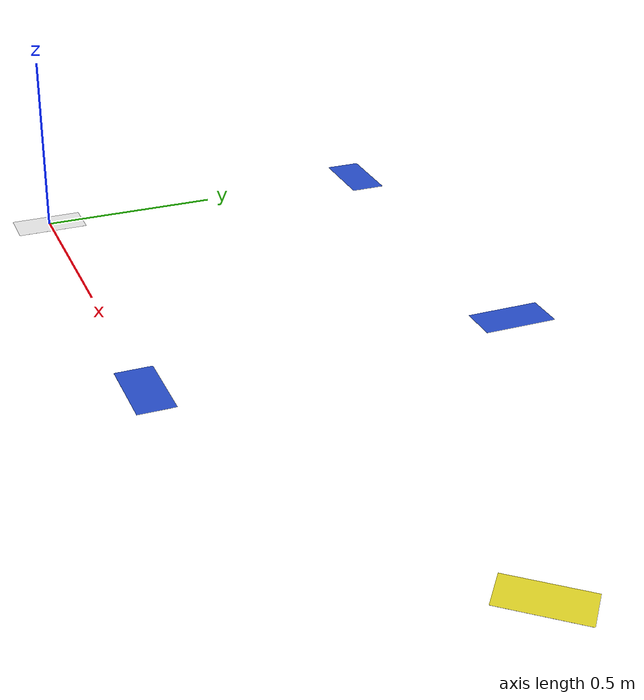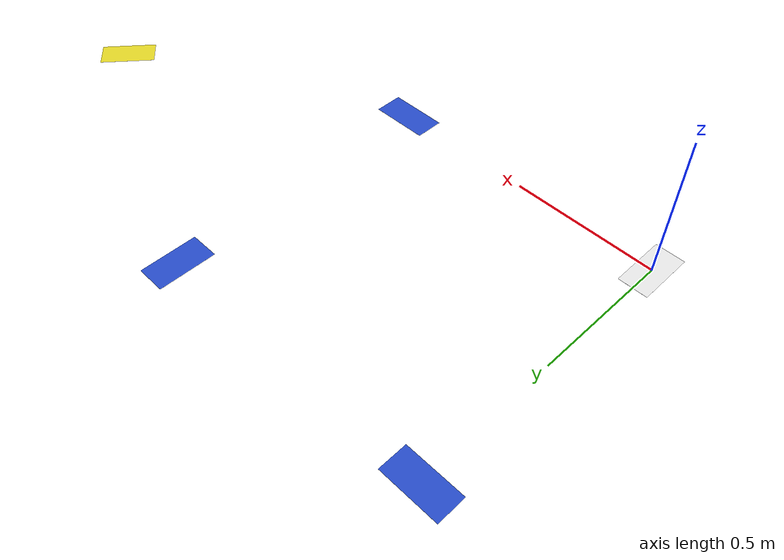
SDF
<sdf version="1.6">
 <world name="default">
  <light name="sun" type="directional">
   <pose>0 0 10 0 -0 0</pose>
   <diffuse>0.8 0.8 0.8 1</diffuse>
   <specular>0.1 0.1 0.1 1</specular>
   <attenuation>
    <range>1000</range>
    <constant>0.9</constant>
    <linear>0.01</linear>
    <quadratic>0.001</quadratic>
   </attenuation>
   <direction>-0.5 0.5 -1</direction>
  </light>
  <gravity>0 0 -9.8</gravity>
  <magnetic_field>6e-06 2.3e-05 -4.2e-05</magnetic_field>
  <atmosphere type="adiabatic"/>
  <physics name="default_physics" default="0" type="ode">
   <max_step_size>0.001</max_step_size>
   <real_time_factor>1</real_time_factor>
   <real_time_update_rate>1000</real_time_update_rate>
  </physics>
  <scene><ambient>0.4 0.4 0.4 1</ambient><background>0.7 0.7 0.7 1</background><shadows>1</shadows></scene>
  <spherical_coordinates>
   <surface_model>EARTH_WGS84</surface_model>
   <latitude_deg>0</latitude_deg>
   <longitude_deg>0</longitude_deg>
   <elevation>0</elevation>
   <heading_deg>0</heading_deg>
  </spherical_coordinates>
  <model name="white marker">
   <static>1</static>
   <link name="link_ground">
    <collision name="collision">
     <geometry><plane><normal>0 0 1</normal><size>0.1 0.2</size></plane></geometry>
     <surface><friction><ode><mu>100</mu><mu2>50</mu2></ode></friction></surface>
    </collision>
    <visual name="visual_ground">
     <cast_shadows>0</cast_shadows>
     <geometry><plane><normal>0 0 1</normal><size>0.1 0.2</size></plane></geometry>
     <material>
      <script><uri>file://media/materials/scripts/gazebo.material</uri><name>Gazebo/White</name></script>
     </material>
    </visual>
   </link>
  </model>
  <model name="Yellow marker">
   <static>1</static>
   <link name="link_ground">
    <collision name="collision">
     <geometry><plane><normal>0 0 1</normal><size>0.1 0.2</size></plane></geometry>
     <surface><friction><ode><mu>100</mu><mu2>50</mu2></ode></friction></surface>
    </collision>
    <visual name="visual_ground">
     <cast_shadows>0</cast_shadows>
     <geometry><plane><normal>0 0 1</normal><size>0.1 0.2</size></plane></geometry>
     <material>
      <script><uri>file://media/materials/scripts/gazebo.material</uri><name>Gazebo/Yellow</name></script>
     </material>
    </visual>
   </link>
   <pose>2 0.5 0 0 -0 2.456</pose>
  </model>
  <model name="blue marker A">
   <static>1</static>
   <link name="link_ground">
    <collision name="collision">
     <geometry><plane><normal>0 0 1</normal><size>0.1 0.2</size></plane></geometry>
     <surface><friction><ode><mu>100</mu><mu2>50</mu2></ode></friction></surface>
    </collision>
    <visual name="visual_ground">
     <cast_shadows>0</cast_shadows>
     <geometry><plane><normal>0 0 1</normal><size>0.1 0.2</size></plane></geometry>
     <material>
      <script><uri>file://media/materials/scripts/gazebo.material</uri><name>Gazebo/Blue</name></script>
     </material>
    </visual>
   </link>
   <pose>1 0 0 0 -0 1.57</pose>
  </model>
  <model name="blue marker B">
   <static>1</static>
   <link name="link_ground">
    <collision name="collision">
     <geometry><plane><normal>0 0 1</normal><size>0.1 0.2</size></plane></geometry>
     <surface><friction><ode><mu>100</mu><mu2>50</mu2></ode></friction></surface>
    </collision>
    <visual name="visual_ground">
     <cast_shadows>0</cast_shadows>
     <geometry><plane><normal>0 0 1</normal><size>0.1 0.2</size></plane></geometry>
     <material>
      <script><uri>file://media/materials/scripts/gazebo.material</uri><name>Gazebo/Blue</name></script>
     </material>
    </visual>
   </link>
   <pose>1 1 0 0 -0 3.14159</pose>
  </model>
  <model name="blue marker C">
   <static>1</static>
   <link name="link_ground">
    <collision name="collision">
     <geometry><plane><normal>0 0 1</normal><size>0.1 0.2</size></plane></geometry>
     <surface><friction><ode><mu>100</mu><mu2>50</mu2></ode></friction></surface>
    </collision>
    <visual name="visual_ground">
     <cast_shadows>0</cast_shadows>
     <geometry><plane><normal>0 0 1</normal><size>0.1 0.2</size></plane></geometry>
     <material>
      <script><uri>file://media/materials/scripts/gazebo.material</uri><name>Gazebo/Blue</name></script>
     </material>
    </visual>
   </link>
   <pose>0 1 0 0 -0 4.71239</pose>
  </model>
 </world>
</sdf>
